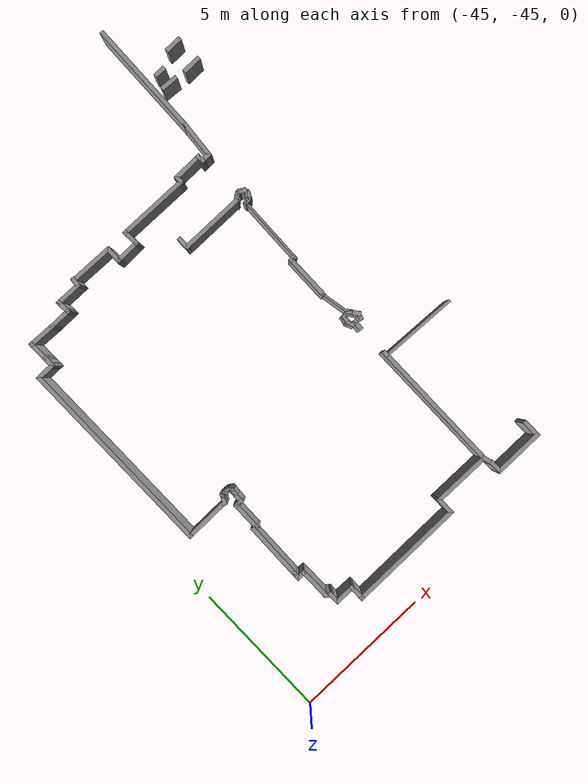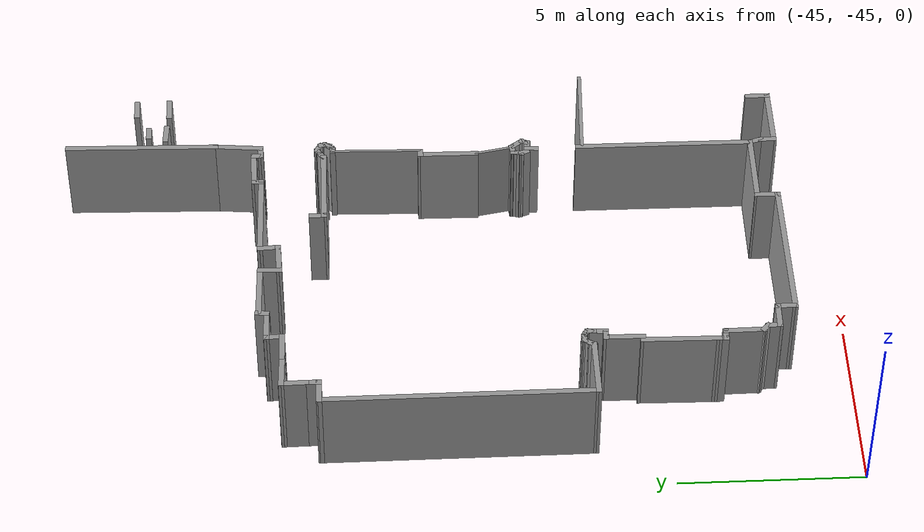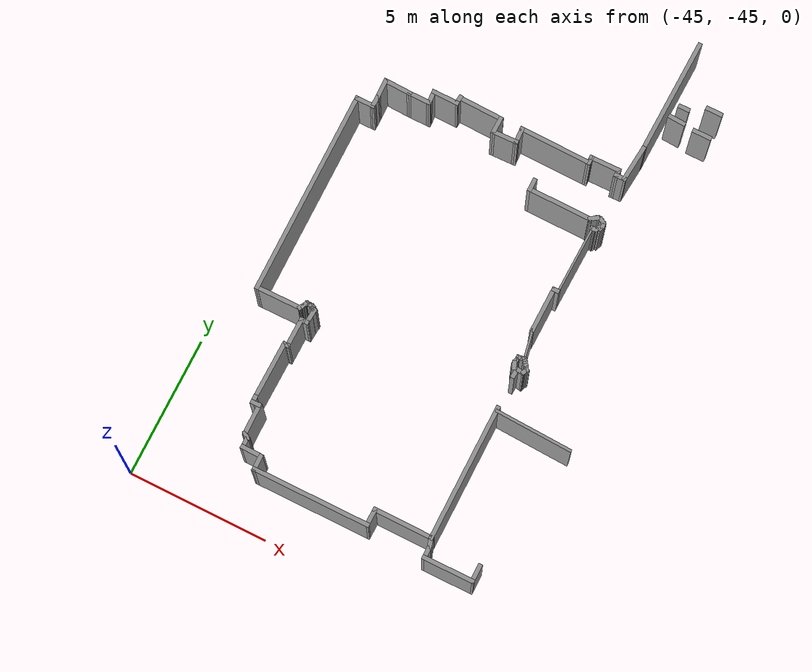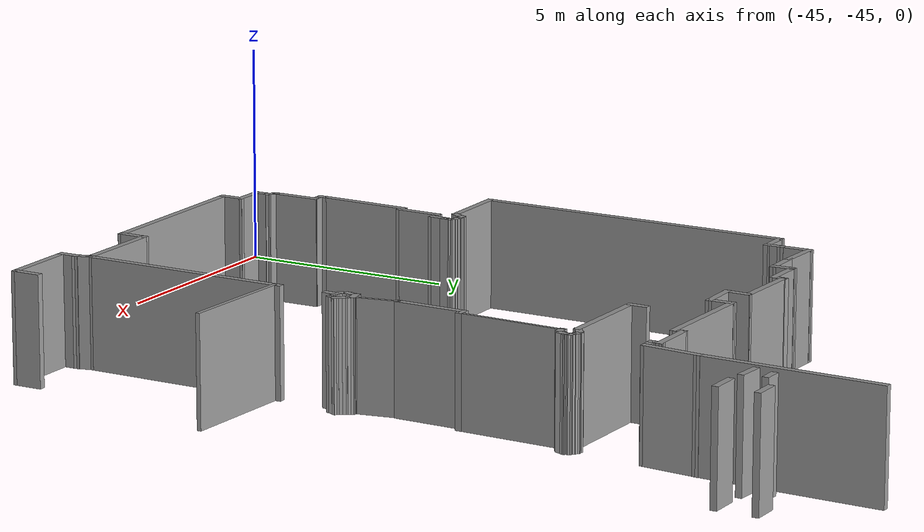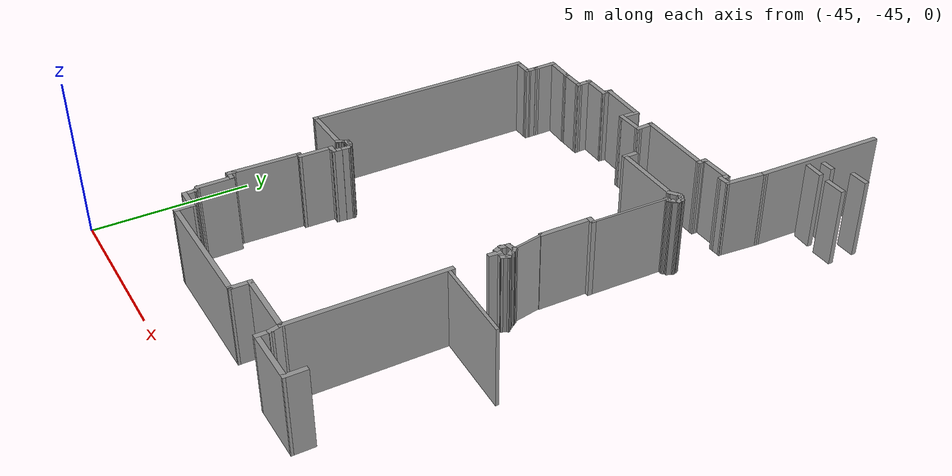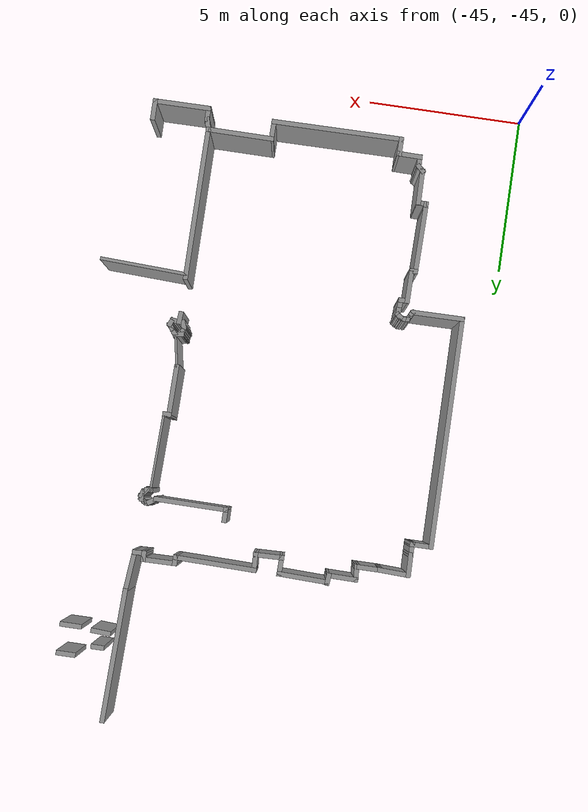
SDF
<sdf version="1.4">
 <model name="3ne_real">
  <pose>-14.229 -33.4428 0 0 -0 0</pose>
  <link name="Wall_11">
   <collision name="Wall_11_Collision">
    <geometry><box><size>7.37845 0.15 2.5</size></box></geometry>
    <pose>0 0 1.25 0 -0 0</pose>
   </collision>
   <visual name="Wall_11_Visual">
    <pose>0 0 1.25 0 -0 0</pose>
    <geometry><box><size>7.37845 0.15 2.5</size></box></geometry>
    <material>
     <script><uri>file://media/materials/scripts/gazebo.material</uri><name>Gazebo/Grey</name></script>
     <ambient>1 1 1 1</ambient>
    </material>
    <meta><layer>0</layer></meta>
   </visual>
   <pose>-29.5763 -0.911101 0 0 -0 -1.56883</pose>
  </link>
  <link name="Wall_13">
   <collision name="Wall_13_Collision">
    <geometry><box><size>1.71274 0.15 2.5</size></box></geometry>
    <pose>0 0 1.25 0 -0 0</pose>
   </collision>
   <visual name="Wall_13_Visual">
    <pose>0 0 1.25 0 -0 0</pose>
    <geometry><box><size>1.71274 0.15 2.5</size></box></geometry>
    <material>
     <script><uri>file://media/materials/scripts/gazebo.material</uri><name>Gazebo/Grey</name></script>
     <ambient>1 1 1 1</ambient>
    </material>
    <meta><layer>0</layer></meta>
   </visual>
   <pose>-28.7878 -4.5197 0 0 -0 0.007194</pose>
  </link>
  <link name="Wall_14">
   <collision name="Wall_14_Collision">
    <geometry><box><size>0.263821 0.15 2.5</size></box></geometry>
    <pose>0 0 1.25 0 -0 0</pose>
   </collision>
   <visual name="Wall_14_Visual">
    <pose>0 0 1.25 0 -0 0</pose>
    <geometry><box><size>0.263821 0.15 2.5</size></box></geometry>
    <material>
     <script><uri>file://media/materials/scripts/gazebo.material</uri><name>Gazebo/Grey</name></script>
     <ambient>1 1 1 1</ambient>
    </material>
    <meta><layer>0</layer></meta>
   </visual>
   <pose>-27.9755 -4.4663 0 0 -0 0.996491</pose>
  </link>
  <link name="Wall_15">
   <collision name="Wall_15_Collision">
    <geometry><box><size>0.253192 0.15 2.5</size></box></geometry>
    <pose>0 0 1.25 0 -0 0</pose>
   </collision>
   <visual name="Wall_15_Visual">
    <pose>0 0 1.25 0 -0 0</pose>
    <geometry><box><size>0.253192 0.15 2.5</size></box></geometry>
    <material>
     <script><uri>file://media/materials/scripts/gazebo.material</uri><name>Gazebo/Grey</name></script>
     <ambient>1 1 1 1</ambient>
    </material>
    <meta><layer>0</layer></meta>
   </visual>
   <pose>-27.9193 -4.37355 0 0 -0 1.05841</pose>
  </link>
  <link name="Wall_16">
   <collision name="Wall_16_Collision">
    <geometry><box><size>0.210803 0.15 2.5</size></box></geometry>
    <pose>0 0 1.25 0 -0 0</pose>
   </collision>
   <visual name="Wall_16_Visual">
    <pose>0 0 1.25 0 -0 0</pose>
    <geometry><box><size>0.210803 0.15 2.5</size></box></geometry>
    <material>
     <script><uri>file://media/materials/scripts/gazebo.material</uri><name>Gazebo/Grey</name></script>
     <ambient>1 1 1 1</ambient>
    </material>
    <meta><layer>0</layer></meta>
   </visual>
   <pose>-27.8772 -4.30328 0 0 -0 0.982794</pose>
  </link>
  <link name="Wall_17">
   <collision name="Wall_17_Collision">
    <geometry><box><size>0.273795 0.15 2.5</size></box></geometry>
    <pose>0 0 1.25 0 -0 0</pose>
   </collision>
   <visual name="Wall_17_Visual">
    <pose>0 0 1.25 0 -0 0</pose>
    <geometry><box><size>0.273795 0.15 2.5</size></box></geometry>
    <material>
     <script><uri>file://media/materials/scripts/gazebo.material</uri><name>Gazebo/Grey</name></script>
     <ambient>1 1 1 1</ambient>
    </material>
    <meta><layer>0</layer></meta>
   </visual>
   <pose>-27.7985 -4.27518 0 0 -0 0.045423</pose>
  </link>
  <link name="Wall_18">
   <collision name="Wall_18_Collision">
    <geometry><box><size>0.255013 0.15 2.5</size></box></geometry>
    <pose>0 0 1.25 0 -0 0</pose>
   </collision>
   <visual name="Wall_18_Visual">
    <pose>0 0 1.25 0 -0 0</pose>
    <geometry><box><size>0.255013 0.15 2.5</size></box></geometry>
    <material>
     <script><uri>file://media/materials/scripts/gazebo.material</uri><name>Gazebo/Grey</name></script>
     <ambient>1 1 1 1</ambient>
    </material>
    <meta><layer>0</layer></meta>
   </visual>
   <pose>-27.686 -4.28642 0 0 -0 -0.270947</pose>
  </link>
  <link name="Wall_19">
   <collision name="Wall_19_Collision">
    <geometry><box><size>0.198356 0.15 2.5</size></box></geometry>
    <pose>0 0 1.25 0 -0 0</pose>
   </collision>
   <visual name="Wall_19_Visual">
    <pose>0 0 1.25 0 -0 0</pose>
    <geometry><box><size>0.198356 0.15 2.5</size></box></geometry>
    <material>
     <script><uri>file://media/materials/scripts/gazebo.material</uri><name>Gazebo/Grey</name></script>
     <ambient>1 1 1 1</ambient>
    </material>
    <meta><layer>0</layer></meta>
   </visual>
   <pose>-27.6158 -4.31452 0 0 -0 -0.620249</pose>
  </link>
  <link name="Wall_20">
   <collision name="Wall_20_Collision">
    <geometry><box><size>0.225626 0.15 2.5</size></box></geometry>
    <pose>0 0 1.25 0 -0 0</pose>
   </collision>
   <visual name="Wall_20_Visual">
    <pose>0 0 1.25 0 -0 0</pose>
    <geometry><box><size>0.225626 0.15 2.5</size></box></geometry>
    <material>
     <script><uri>file://media/materials/scripts/gazebo.material</uri><name>Gazebo/Grey</name></script>
     <ambient>1 1 1 1</ambient>
    </material>
    <meta><layer>0</layer></meta>
   </visual>
   <pose>-27.568 -4.35387 0 0 -0 -0.732815</pose>
  </link>
  <link name="Wall_21">
   <collision name="Wall_21_Collision">
    <geometry><box><size>0.302707 0.15 2.5</size></box></geometry>
    <pose>0 0 1.25 0 -0 0</pose>
   </collision>
   <visual name="Wall_21_Visual">
    <pose>0 0 1.25 0 -0 0</pose>
    <geometry><box><size>0.302707 0.15 2.5</size></box></geometry>
    <material>
     <script><uri>file://media/materials/scripts/gazebo.material</uri><name>Gazebo/Grey</name></script>
     <ambient>1 1 1 1</ambient>
    </material>
    <meta><layer>0</layer></meta>
   </visual>
   <pose>-27.5427 -4.45505 0 0 -0 -1.60782</pose>
  </link>
  <link name="Wall_23">
   <collision name="Wall_23_Collision">
    <geometry><box><size>0.617408 0.15 2.5</size></box></geometry>
    <pose>0 0 1.25 0 -0 0</pose>
   </collision>
   <visual name="Wall_23_Visual">
    <pose>0 0 1.25 0 -0 0</pose>
    <geometry><box><size>0.617408 0.15 2.5</size></box></geometry>
    <material>
     <script><uri>file://media/materials/scripts/gazebo.material</uri><name>Gazebo/Grey</name></script>
     <ambient>1 1 1 1</ambient>
    </material>
    <meta><layer>0</layer></meta>
   </visual>
   <pose>-27.5539 -4.61245 0 0 -0 -1.63096</pose>
  </link>
  <link name="Wall_24">
   <collision name="Wall_24_Collision">
    <geometry><box><size>0.352364 0.15 2.5</size></box></geometry>
    <pose>0 0 1.25 0 -0 0</pose>
   </collision>
   <visual name="Wall_24_Visual">
    <pose>0 0 1.25 0 -0 0</pose>
    <geometry><box><size>0.352364 0.15 2.5</size></box></geometry>
    <material>
     <script><uri>file://media/materials/scripts/gazebo.material</uri><name>Gazebo/Grey</name></script>
     <ambient>1 1 1 1</ambient>
    </material>
    <meta><layer>0</layer></meta>
   </visual>
   <pose>-27.6692 -4.84573 0 0 -0 3.14159</pose>
  </link>
  <link name="Wall_25">
   <collision name="Wall_25_Collision">
    <geometry><box><size>1.11692 0.15 2.5</size></box></geometry>
    <pose>0 0 1.25 0 -0 0</pose>
   </collision>
   <visual name="Wall_25_Visual">
    <pose>0 0 1.25 0 -0 0</pose>
    <geometry><box><size>1.11692 0.15 2.5</size></box></geometry>
    <material>
     <script><uri>file://media/materials/scripts/gazebo.material</uri><name>Gazebo/Grey</name></script>
     <ambient>1 1 1 1</ambient>
    </material>
    <meta><layer>0</layer></meta>
   </visual>
   <pose>-27.776 -5.32916 0 0 -0 -1.58242</pose>
  </link>
  <link name="Wall_27">
   <collision name="Wall_27_Collision">
    <geometry><box><size>0.26818 0.15 2.5</size></box></geometry>
    <pose>0 0 1.25 0 -0 0</pose>
   </collision>
   <visual name="Wall_27_Visual">
    <pose>0 0 1.25 0 -0 0</pose>
    <geometry><box><size>0.26818 0.15 2.5</size></box></geometry>
    <material>
     <script><uri>file://media/materials/scripts/gazebo.material</uri><name>Gazebo/Grey</name></script>
     <ambient>1 1 1 1</ambient>
    </material>
    <meta><layer>0</layer></meta>
   </visual>
   <pose>-27.8406 -5.81258 0 0 -0 3.14159</pose>
  </link>
  <link name="Wall_274">
   <collision name="Wall_274_Collision">
    <geometry><box><size>4.22183 0.15 2.5</size></box></geometry>
    <pose>0 0 1.25 0 -0 0</pose>
   </collision>
   <visual name="Wall_274_Visual">
    <pose>0 0 1.25 0 -0 0</pose>
    <geometry><box><size>4.22183 0.15 2.5</size></box></geometry>
    <material>
     <script><uri>file://media/materials/scripts/gazebo.material</uri><name>Gazebo/Grey</name></script>
     <ambient>1 1 1 1</ambient>
    </material>
    <meta><layer>0</layer></meta>
   </visual>
   <pose>-20.2609 7.45145 0 0 -0 -1.59857</pose>
  </link>
  <link name="Wall_276">
   <collision name="Wall_276_Collision">
    <geometry><box><size>1.38756 0.15 2.5</size></box></geometry>
    <pose>0 0 1.25 0 -0 0</pose>
   </collision>
   <visual name="Wall_276_Visual">
    <pose>0 0 1.25 0 -0 0</pose>
    <geometry><box><size>1.38756 0.15 2.5</size></box></geometry>
    <material>
     <script><uri>file://media/materials/scripts/gazebo.material</uri><name>Gazebo/Grey</name></script>
     <ambient>1 1 1 1</ambient>
    </material>
    <meta><layer>0</layer></meta>
   </visual>
   <pose>-20.3739 4.80012 0 0 -0 -1.66228</pose>
  </link>
  <link name="Wall_277">
   <collision name="Wall_277_Collision">
    <geometry><box><size>0.444181 0.15 2.5</size></box></geometry>
    <pose>0 0 1.25 0 -0 0</pose>
   </collision>
   <visual name="Wall_277_Visual">
    <pose>0 0 1.25 0 -0 0</pose>
    <geometry><box><size>0.444181 0.15 2.5</size></box></geometry>
    <material>
     <script><uri>file://media/materials/scripts/gazebo.material</uri><name>Gazebo/Grey</name></script>
     <ambient>1 1 1 1</ambient>
    </material>
    <meta><layer>0</layer></meta>
   </visual>
   <pose>-20.5774 4.17828 0 0 -0 -3.10315</pose>
  </link>
  <link name="Wall_278">
   <collision name="Wall_278_Collision">
    <geometry><box><size>0.342207 0.15 2.5</size></box></geometry>
    <pose>0 0 1.25 0 -0 0</pose>
   </collision>
   <visual name="Wall_278_Visual">
    <pose>0 0 1.25 0 -0 0</pose>
    <geometry><box><size>0.342207 0.15 2.5</size></box></geometry>
    <material>
     <script><uri>file://media/materials/scripts/gazebo.material</uri><name>Gazebo/Grey</name></script>
     <ambient>1 1 1 1</ambient>
    </material>
    <meta><layer>0</layer></meta>
   </visual>
   <pose>-20.7244 4.26873 0 0 -0 1.5708</pose>
  </link>
  <link name="Wall_279">
   <collision name="Wall_279_Collision">
    <geometry><box><size>1.14502 0.15 2.5</size></box></geometry>
    <pose>0 0 1.25 0 -0 0</pose>
   </collision>
   <visual name="Wall_279_Visual">
    <pose>0 0 1.25 0 -0 0</pose>
    <geometry><box><size>1.14502 0.15 2.5</size></box></geometry>
    <material>
     <script><uri>file://media/materials/scripts/gazebo.material</uri><name>Gazebo/Grey</name></script>
     <ambient>1 1 1 1</ambient>
    </material>
    <meta><layer>0</layer></meta>
   </visual>
   <pose>-21.2219 4.35918 0 0 -0 -3.13023</pose>
  </link>
  <link name="Wall_28">
   <collision name="Wall_28_Collision">
    <geometry><box><size>2.1402 0.15 2.5</size></box></geometry>
    <pose>0 0 1.25 0 -0 0</pose>
   </collision>
   <visual name="Wall_28_Visual">
    <pose>0 0 1.25 0 -0 0</pose>
    <geometry><box><size>2.1402 0.15 2.5</size></box></geometry>
    <material>
     <script><uri>file://media/materials/scripts/gazebo.material</uri><name>Gazebo/Grey</name></script>
     <ambient>1 1 1 1</ambient>
    </material>
    <meta><layer>0</layer></meta>
   </visual>
   <pose>-27.9165 -6.80754 0 0 -0 -1.58774</pose>
  </link>
  <link name="Wall_280">
   <collision name="Wall_280_Collision">
    <geometry><box><size>0.342207 0.15 2.5</size></box></geometry>
    <pose>0 0 1.25 0 -0 0</pose>
   </collision>
   <visual name="Wall_280_Visual">
    <pose>0 0 1.25 0 -0 0</pose>
    <geometry><box><size>0.342207 0.15 2.5</size></box></geometry>
    <material>
     <script><uri>file://media/materials/scripts/gazebo.material</uri><name>Gazebo/Grey</name></script>
     <ambient>1 1 1 1</ambient>
    </material>
    <meta><layer>0</layer></meta>
   </visual>
   <pose>-21.7194 4.25742 0 0 -0 -1.5708</pose>
  </link>
  <link name="Wall_281">
   <collision name="Wall_281_Collision">
    <geometry><box><size>2.63803 0.15 2.5</size></box></geometry>
    <pose>0 0 1.25 0 -0 0</pose>
   </collision>
   <visual name="Wall_281_Visual">
    <pose>0 0 1.25 0 -0 0</pose>
    <geometry><box><size>2.63803 0.15 2.5</size></box></geometry>
    <material>
     <script><uri>file://media/materials/scripts/gazebo.material</uri><name>Gazebo/Grey</name></script>
     <ambient>1 1 1 1</ambient>
    </material>
    <meta><layer>0</layer></meta>
   </visual>
   <pose>-22.9631 4.18393 0 0 -0 3.12341</pose>
  </link>
  <link name="Wall_283">
   <collision name="Wall_283_Collision">
    <geometry><box><size>0.636696 0.15 2.5</size></box></geometry>
    <pose>0 0 1.25 0 -0 0</pose>
   </collision>
   <visual name="Wall_283_Visual">
    <pose>0 0 1.25 0 -0 0</pose>
    <geometry><box><size>0.636696 0.15 2.5</size></box></geometry>
    <material>
     <script><uri>file://media/materials/scripts/gazebo.material</uri><name>Gazebo/Grey</name></script>
     <ambient>1 1 1 1</ambient>
    </material>
    <meta><layer>0</layer></meta>
   </visual>
   <pose>-24.1954 3.96346 0 0 -0 -1.52432</pose>
  </link>
  <link name="Wall_284">
   <collision name="Wall_284_Collision">
    <geometry><box><size>0.975669 0.15 2.5</size></box></geometry>
    <pose>0 0 1.25 0 -0 0</pose>
   </collision>
   <visual name="Wall_284_Visual">
    <pose>0 0 1.25 0 -0 0</pose>
    <geometry><box><size>0.975669 0.15 2.5</size></box></geometry>
    <material>
     <script><uri>file://media/materials/scripts/gazebo.material</uri><name>Gazebo/Grey</name></script>
     <ambient>1 1 1 1</ambient>
    </material>
    <meta><layer>0</layer></meta>
   </visual>
   <pose>-24.5968 3.70906 0 0 -0 -3.1142</pose>
  </link>
  <link name="Wall_285">
   <collision name="Wall_285_Collision">
    <geometry><box><size>0.658909 0.15 2.5</size></box></geometry>
    <pose>0 0 1.25 0 -0 0</pose>
   </collision>
   <visual name="Wall_285_Visual">
    <pose>0 0 1.25 0 -0 0</pose>
    <geometry><box><size>0.658909 0.15 2.5</size></box></geometry>
    <material>
     <script><uri>file://media/materials/scripts/gazebo.material</uri><name>Gazebo/Grey</name></script>
     <ambient>1 1 1 1</ambient>
    </material>
    <meta><layer>0</layer></meta>
   </visual>
   <pose>-25.0038 3.95215 0 0 -0 1.54858</pose>
  </link>
  <link name="Wall_286">
   <collision name="Wall_286_Collision">
    <geometry><box><size>1.63112 0.15 2.5</size></box></geometry>
    <pose>0 0 1.25 0 -0 0</pose>
   </collision>
   <visual name="Wall_286_Visual">
    <pose>0 0 1.25 0 -0 0</pose>
    <geometry><box><size>1.63112 0.15 2.5</size></box></geometry>
    <material>
     <script><uri>file://media/materials/scripts/gazebo.material</uri><name>Gazebo/Grey</name></script>
     <ambient>1 1 1 1</ambient>
    </material>
    <meta><layer>0</layer></meta>
   </visual>
   <pose>-25.7388 4.22916 0 0 -0 3.11107</pose>
  </link>
  <link name="Wall_288">
   <collision name="Wall_288_Collision">
    <geometry><box><size>1.05514 0.15 2.5</size></box></geometry>
    <pose>0 0 1.25 0 -0 0</pose>
   </collision>
   <visual name="Wall_288_Visual">
    <pose>0 0 1.25 0 -0 0</pose>
    <geometry><box><size>1.05514 0.15 2.5</size></box></geometry>
    <material>
     <script><uri>file://media/materials/scripts/gazebo.material</uri><name>Gazebo/Grey</name></script>
     <ambient>1 1 1 1</ambient>
    </material>
    <meta><layer>0</layer></meta>
   </visual>
   <pose>-28.5484 3.65819 0 0 -0 -0.037482</pose>
  </link>
  <link name="Wall_289">
   <collision name="Wall_289_Collision">
    <geometry><box><size>0.873603 0.15 2.5</size></box></geometry>
    <pose>0 0 1.25 0 -0 0</pose>
   </collision>
   <visual name="Wall_289_Visual">
    <pose>0 0 1.25 0 -0 0</pose>
    <geometry><box><size>0.873603 0.15 2.5</size></box></geometry>
    <material>
     <script><uri>file://media/materials/scripts/gazebo.material</uri><name>Gazebo/Grey</name></script>
     <ambient>1 1 1 1</ambient>
    </material>
    <meta><layer>0</layer></meta>
   </visual>
   <pose>-27.7343 3.64123 0 0 -0 0</pose>
  </link>
  <link name="Wall_29">
   <collision name="Wall_29_Collision">
    <geometry><box><size>0.336265 0.15 2.5</size></box></geometry>
    <pose>0 0 1.25 0 -0 0</pose>
   </collision>
   <visual name="Wall_29_Visual">
    <pose>0 0 1.25 0 -0 0</pose>
    <geometry><box><size>0.336265 0.15 2.5</size></box></geometry>
    <material>
     <script><uri>file://media/materials/scripts/gazebo.material</uri><name>Gazebo/Grey</name></script>
     <ambient>1 1 1 1</ambient>
    </material>
    <meta><layer>0</layer></meta>
   </visual>
   <pose>-27.9334 -7.89525 0 0 -0 -1.5708</pose>
  </link>
  <link name="Wall_290">
   <collision name="Wall_290_Collision">
    <geometry><box><size>0.557654 0.15 2.5</size></box></geometry>
    <pose>0 0 1.25 0 -0 0</pose>
   </collision>
   <visual name="Wall_290_Visual">
    <pose>0 0 1.25 0 -0 0</pose>
    <geometry><box><size>0.557654 0.15 2.5</size></box></geometry>
    <material>
     <script><uri>file://media/materials/scripts/gazebo.material</uri><name>Gazebo/Grey</name></script>
     <ambient>1 1 1 1</ambient>
    </material>
    <meta><layer>0</layer></meta>
   </visual>
   <pose>-27.3838 3.84474 0 0 -0 1.6263</pose>
  </link>
  <link name="Wall_291">
   <collision name="Wall_291_Collision">
    <geometry><box><size>0.998047 0.15 2.5</size></box></geometry>
    <pose>0 0 1.25 0 -0 0</pose>
   </collision>
   <visual name="Wall_291_Visual">
    <pose>0 0 1.25 0 -0 0</pose>
    <geometry><box><size>0.998047 0.15 2.5</size></box></geometry>
    <material>
     <script><uri>file://media/materials/scripts/gazebo.material</uri><name>Gazebo/Grey</name></script>
     <ambient>1 1 1 1</ambient>
    </material>
    <meta><layer>0</layer></meta>
   </visual>
   <pose>-26.9711 4.0426 0 0 -0 -0.013333</pose>
  </link>
  <link name="Wall_292">
   <collision name="Wall_292_Collision">
    <geometry><box><size>0.388507 0.15 2.5</size></box></geometry>
    <pose>0 0 1.25 0 -0 0</pose>
   </collision>
   <visual name="Wall_292_Visual">
    <pose>0 0 1.25 0 -0 0</pose>
    <geometry><box><size>0.388507 0.15 2.5</size></box></geometry>
    <material>
     <script><uri>file://media/materials/scripts/gazebo.material</uri><name>Gazebo/Grey</name></script>
     <ambient>1 1 1 1</ambient>
    </material>
    <meta><layer>0</layer></meta>
   </visual>
   <pose>-26.5358 4.15566 0 0 -0 1.47585</pose>
  </link>
  <link name="Wall_294">
   <collision name="Wall_294_Collision">
    <geometry><box><size>0.744177 0.15 2.5</size></box></geometry>
    <pose>0 0 1.25 0 -0 0</pose>
   </collision>
   <visual name="Wall_294_Visual">
    <pose>0 0 1.25 0 -0 0</pose>
    <geometry><box><size>0.744177 0.15 2.5</size></box></geometry>
    <material>
     <script><uri>file://media/materials/scripts/gazebo.material</uri><name>Gazebo/Grey</name></script>
     <ambient>1 1 1 1</ambient>
    </material>
    <meta><layer>0</layer></meta>
   </visual>
   <pose>-29.2864 2.70296 0 0 -0 -0.000526</pose>
  </link>
  <link name="Wall_295">
   <collision name="Wall_295_Collision">
    <geometry><box><size>0.477882 0.15 2.5</size></box></geometry>
    <pose>0 0 1.25 0 -0 0</pose>
   </collision>
   <visual name="Wall_295_Visual">
    <pose>0 0 1.25 0 -0 0</pose>
    <geometry><box><size>0.477882 0.15 2.5</size></box></geometry>
    <material>
     <script><uri>file://media/materials/scripts/gazebo.material</uri><name>Gazebo/Grey</name></script>
     <ambient>1 1 1 1</ambient>
    </material>
    <meta><layer>0</layer></meta>
   </visual>
   <pose>-28.9893 2.86675 0 0 -0 1.5708</pose>
  </link>
  <link name="Wall_297">
   <collision name="Wall_297_Collision">
    <geometry><box><size>4.9138 0.15 2.5</size></box></geometry>
    <pose>0 0 1.25 0 -0 0</pose>
   </collision>
   <visual name="Wall_297_Visual">
    <pose>0 0 1.25 0 -0 0</pose>
    <geometry><box><size>4.9138 0.15 2.5</size></box></geometry>
    <material>
     <script><uri>file://media/materials/scripts/gazebo.material</uri><name>Gazebo/Grey</name></script>
     <ambient>1 1 1 1</ambient>
    </material>
    <meta><layer>0</layer></meta>
   </visual>
   <pose>-20.7532 -6.97771 0 0 -0 1.56527</pose>
  </link>
  <link name="Wall_299">
   <collision name="Wall_299_Collision">
    <geometry><box><size>2.79361 0.1 2.5</size></box></geometry>
    <pose>0 0 1.25 0 -0 0</pose>
   </collision>
   <visual name="Wall_299_Visual">
    <pose>0 0 1.25 0 -0 0</pose>
    <geometry><box><size>2.79361 0.1 2.5</size></box></geometry>
    <material>
     <script><uri>file://media/materials/scripts/gazebo.material</uri><name>Gazebo/Grey</name></script>
     <ambient>1 1 1 1</ambient>
    </material>
    <meta><layer>0</layer></meta>
   </visual>
   <pose>-19.3835 -4.75375 0 0 -0 -0.041967</pose>
  </link>
  <link name="Wall_30">
   <collision name="Wall_30_Collision">
    <geometry><box><size>0.374849 0.15 2.5</size></box></geometry>
    <pose>0 0 1.25 0 -0 0</pose>
   </collision>
   <visual name="Wall_30_Visual">
    <pose>0 0 1.25 0 -0 0</pose>
    <geometry><box><size>0.374849 0.15 2.5</size></box></geometry>
    <material>
     <script><uri>file://media/materials/scripts/gazebo.material</uri><name>Gazebo/Grey</name></script>
     <ambient>1 1 1 1</ambient>
    </material>
    <meta><layer>0</layer></meta>
   </visual>
   <pose>-27.8209 -7.988 0 0 -0 0</pose>
  </link>
  <link name="Wall_33">
   <collision name="Wall_33_Collision">
    <geometry><box><size>1.16188 0.15 2.5</size></box></geometry>
    <pose>0 0 1.25 0 -0 0</pose>
   </collision>
   <visual name="Wall_33_Visual">
    <pose>0 0 1.25 0 -0 0</pose>
    <geometry><box><size>1.16188 0.15 2.5</size></box></geometry>
    <material>
     <script><uri>file://media/materials/scripts/gazebo.material</uri><name>Gazebo/Grey</name></script>
     <ambient>1 1 1 1</ambient>
    </material>
    <meta><layer>0</layer></meta>
   </visual>
   <pose>-27.6804 -8.50515 0 0 -0 -1.55969</pose>
  </link>
  <link name="Wall_34">
   <collision name="Wall_34_Collision">
    <geometry><box><size>0.336858 0.15 2.5</size></box></geometry>
    <pose>0 0 1.25 0 -0 0</pose>
   </collision>
   <visual name="Wall_34_Visual">
    <pose>0 0 1.25 0 -0 0</pose>
    <geometry><box><size>0.336858 0.15 2.5</size></box></geometry>
    <material>
     <script><uri>file://media/materials/scripts/gazebo.material</uri><name>Gazebo/Grey</name></script>
     <ambient>1 1 1 1</ambient>
    </material>
    <meta><layer>0</layer></meta>
   </visual>
   <pose>-27.6073 -9.0757 0 0 -0 -0.764125</pose>
  </link>
  <link name="Wall_35">
   <collision name="Wall_35_Collision">
    <geometry><box><size>0.453754 0.15 2.5</size></box></geometry>
    <pose>0 0 1.25 0 -0 0</pose>
   </collision>
   <visual name="Wall_35_Visual">
    <pose>0 0 1.25 0 -0 0</pose>
    <geometry><box><size>0.453754 0.15 2.5</size></box></geometry>
    <material>
     <script><uri>file://media/materials/scripts/gazebo.material</uri><name>Gazebo/Grey</name></script>
     <ambient>1 1 1 1</ambient>
    </material>
    <meta><layer>0</layer></meta>
   </visual>
   <pose>-27.5371 -9.29212 0 0 -0 -1.55228</pose>
  </link>
  <link name="Wall_36">
   <collision name="Wall_36_Collision">
    <geometry><box><size>0.813305 0.15 2.5</size></box></geometry>
    <pose>0 0 1.25 0 -0 0</pose>
   </collision>
   <visual name="Wall_36_Visual">
    <pose>0 0 1.25 0 -0 0</pose>
    <geometry><box><size>0.813305 0.15 2.5</size></box></geometry>
    <material>
     <script><uri>file://media/materials/scripts/gazebo.material</uri><name>Gazebo/Grey</name></script>
     <ambient>1 1 1 1</ambient>
    </material>
    <meta><layer>0</layer></meta>
   </visual>
   <pose>-27.2026 -9.44951 0 0 -0 -0.016948</pose>
  </link>
  <link name="Wall_37">
   <collision name="Wall_37_Collision">
    <geometry><box><size>0.616697 0.15 2.5</size></box></geometry>
    <pose>0 0 1.25 0 -0 0</pose>
   </collision>
   <visual name="Wall_37_Visual">
    <pose>0 0 1.25 0 -0 0</pose>
    <geometry><box><size>0.616697 0.15 2.5</size></box></geometry>
    <material>
     <script><uri>file://media/materials/scripts/gazebo.material</uri><name>Gazebo/Grey</name></script>
     <ambient>1 1 1 1</ambient>
    </material>
    <meta><layer>0</layer></meta>
   </visual>
   <pose>-26.871 -9.68842 0 0 -0 -1.5708</pose>
  </link>
  <link name="Wall_38">
   <collision name="Wall_38_Collision">
    <geometry><box><size>4.22542 0.15 2.5</size></box></geometry>
    <pose>0 0 1.25 0 -0 0</pose>
   </collision>
   <visual name="Wall_38_Visual">
    <pose>0 0 1.25 0 -0 0</pose>
    <geometry><box><size>4.22542 0.15 2.5</size></box></geometry>
    <material>
     <script><uri>file://media/materials/scripts/gazebo.material</uri><name>Gazebo/Grey</name></script>
     <ambient>1 1 1 1</ambient>
    </material>
    <meta><layer>0</layer></meta>
   </visual>
   <pose>-24.8333 -9.91326 0 0 -0 0.004138</pose>
  </link>
  <link name="Wall_42">
   <collision name="Wall_42_Collision">
    <geometry><box><size>0.70653 0.15 2.5</size></box></geometry>
    <pose>0 0 1.25 0 -0 0</pose>
   </collision>
   <visual name="Wall_42_Visual">
    <pose>0 0 1.25 0 -0 0</pose>
    <geometry><box><size>0.70653 0.15 2.5</size></box></geometry>
    <material>
     <script><uri>file://media/materials/scripts/gazebo.material</uri><name>Gazebo/Grey</name></script>
     <ambient>1 1 1 1</ambient>
    </material>
    <meta><layer>0</layer></meta>
   </visual>
   <pose>-22.7928 -9.62658 0 0 -0 1.5607</pose>
  </link>
  <link name="Wall_43">
   <collision name="Wall_43_Collision">
    <geometry><box><size>2.17367 0.15 2.5</size></box></geometry>
    <pose>0 0 1.25 0 -0 0</pose>
   </collision>
   <visual name="Wall_43_Visual">
    <pose>0 0 1.25 0 -0 0</pose>
    <geometry><box><size>2.17367 0.15 2.5</size></box></geometry>
    <material>
     <script><uri>file://media/materials/scripts/gazebo.material</uri><name>Gazebo/Grey</name></script>
     <ambient>1 1 1 1</ambient>
    </material>
    <meta><layer>0</layer></meta>
   </visual>
   <pose>-21.7781 -9.35395 0 0 -0 -0.005555</pose>
  </link>
  <link name="Wall_44">
   <collision name="Wall_44_Collision">
    <geometry><box><size>0.475886 0.15 2.5</size></box></geometry>
    <pose>0 0 1.25 0 -0 0</pose>
   </collision>
   <visual name="Wall_44_Visual">
    <pose>0 0 1.25 0 -0 0</pose>
    <geometry><box><size>0.475886 0.15 2.5</size></box></geometry>
    <material>
     <script><uri>file://media/materials/scripts/gazebo.material</uri><name>Gazebo/Grey</name></script>
     <ambient>1 1 1 1</ambient>
    </material>
    <meta><layer>0</layer></meta>
   </visual>
   <pose>-20.7241 -9.51697 0 0 -0 -1.30908</pose>
  </link>
  <link name="Wall_45">
   <collision name="Wall_45_Collision">
    <geometry><box><size>0.504539 0.15 2.5</size></box></geometry>
    <pose>0 0 1.25 0 -0 0</pose>
   </collision>
   <visual name="Wall_45_Visual">
    <pose>0 0 1.25 0 -0 0</pose>
    <geometry><box><size>0.504539 0.15 2.5</size></box></geometry>
    <material>
     <script><uri>file://media/materials/scripts/gazebo.material</uri><name>Gazebo/Grey</name></script>
     <ambient>1 1 1 1</ambient>
    </material>
    <meta><layer>0</layer></meta>
   </visual>
   <pose>-20.6792 -9.85143 0 0 -0 -1.55492</pose>
  </link>
  <link name="Wall_46">
   <collision name="Wall_46_Collision">
    <geometry><box><size>1.85886 0.15 2.5</size></box></geometry>
    <pose>0 0 1.25 0 -0 0</pose>
   </collision>
   <visual name="Wall_46_Visual">
    <pose>0 0 1.25 0 -0 0</pose>
    <geometry><box><size>1.85886 0.15 2.5</size></box></geometry>
    <material>
     <script><uri>file://media/materials/scripts/gazebo.material</uri><name>Gazebo/Grey</name></script>
     <ambient>1 1 1 1</ambient>
    </material>
    <meta><layer>0</layer></meta>
   </visual>
   <pose>-19.8219 -10.0257 0 0 -0 0.003289</pose>
  </link>
  <link name="Wall_47">
   <collision name="Wall_47_Collision">
    <geometry><box><size>0.689638 0.15 2.5</size></box></geometry>
    <pose>0 0 1.25 0 -0 0</pose>
   </collision>
   <visual name="Wall_47_Visual">
    <pose>0 0 1.25 0 -0 0</pose>
    <geometry><box><size>0.689638 0.15 2.5</size></box></geometry>
    <material>
     <script><uri>file://media/materials/scripts/gazebo.material</uri><name>Gazebo/Grey</name></script>
     <ambient>1 1 1 1</ambient>
    </material>
    <meta><layer>0</layer></meta>
   </visual>
   <pose>-18.9675 -9.75306 0 0 -0 1.5708</pose>
  </link>
  <link name="Wall_569">
   <collision name="Wall_569_Collision">
    <geometry><box><size>0.486752 0.15 2.5</size></box></geometry>
    <pose>0 0 1.25 0 -0 0</pose>
   </collision>
   <visual name="Wall_569_Visual">
    <pose>0 0 1.25 0 -0 0</pose>
    <geometry><box><size>0.486752 0.15 2.5</size></box></geometry>
    <material>
     <script><uri>file://media/materials/scripts/gazebo.material</uri><name>Gazebo/Grey</name></script>
     <ambient>1 1 1 1</ambient>
    </material>
    <meta><layer>0</layer></meta>
   </visual>
   <pose>-23.0586 2.63337 0 0 -0 -1.5708</pose>
  </link>
  <link name="Wall_570">
   <collision name="Wall_570_Collision">
    <geometry><box><size>2.36486 0.15 2.5</size></box></geometry>
    <pose>0 0 1.25 0 -0 0</pose>
   </collision>
   <visual name="Wall_570_Visual">
    <pose>0 0 1.25 0 -0 0</pose>
    <geometry><box><size>2.36486 0.15 2.5</size></box></geometry>
    <material>
     <script><uri>file://media/materials/scripts/gazebo.material</uri><name>Gazebo/Grey</name></script>
     <ambient>1 1 1 1</ambient>
    </material>
    <meta><layer>0</layer></meta>
   </visual>
   <pose>-21.9512 2.4554 0 0 -0 -0.008928</pose>
  </link>
  <link name="Wall_571">
   <collision name="Wall_571_Collision">
    <geometry><box><size>0.391382 0.15 2.5</size></box></geometry>
    <pose>0 0 1.25 0 -0 0</pose>
   </collision>
   <visual name="Wall_571_Visual">
    <pose>0 0 1.25 0 -0 0</pose>
    <geometry><box><size>0.391382 0.15 2.5</size></box></geometry>
    <material>
     <script><uri>file://media/materials/scripts/gazebo.material</uri><name>Gazebo/Grey</name></script>
     <ambient>1 1 1 1</ambient>
    </material>
    <meta><layer>0</layer></meta>
   </visual>
   <pose>-20.7449 2.51472 0 0 -0 0.610726</pose>
  </link>
  <link name="Wall_572">
   <collision name="Wall_572_Collision">
    <geometry><box><size>0.231533 0.15 2.5</size></box></geometry>
    <pose>0 0 1.25 0 -0 0</pose>
   </collision>
   <visual name="Wall_572_Visual">
    <pose>0 0 1.25 0 -0 0</pose>
    <geometry><box><size>0.231533 0.15 2.5</size></box></geometry>
    <material>
     <script><uri>file://media/materials/scripts/gazebo.material</uri><name>Gazebo/Grey</name></script>
     <ambient>1 1 1 1</ambient>
    </material>
    <meta><layer>0</layer></meta>
   </visual>
   <pose>-20.6065 2.59382 0 0 -0 0.244979</pose>
  </link>
  <link name="Wall_573">
   <collision name="Wall_573_Collision">
    <geometry><box><size>0.212533 0.15 2.5</size></box></geometry>
    <pose>0 0 1.25 0 -0 0</pose>
   </collision>
   <visual name="Wall_573_Visual">
    <pose>0 0 1.25 0 -0 0</pose>
    <geometry><box><size>0.212533 0.15 2.5</size></box></geometry>
    <material>
     <script><uri>file://media/materials/scripts/gazebo.material</uri><name>Gazebo/Grey</name></script>
     <ambient>1 1 1 1</ambient>
    </material>
    <meta><layer>0</layer></meta>
   </visual>
   <pose>-20.5373 2.59382 0 0 -0 -0.321751</pose>
  </link>
  <link name="Wall_574">
   <collision name="Wall_574_Collision">
    <geometry><box><size>0.292598 0.15 2.5</size></box></geometry>
    <pose>0 0 1.25 0 -0 0</pose>
   </collision>
   <visual name="Wall_574_Visual">
    <pose>0 0 1.25 0 -0 0</pose>
    <geometry><box><size>0.292598 0.15 2.5</size></box></geometry>
    <material>
     <script><uri>file://media/materials/scripts/gazebo.material</uri><name>Gazebo/Grey</name></script>
     <ambient>1 1 1 1</ambient>
    </material>
    <meta><layer>0</layer></meta>
   </visual>
   <pose>-20.4483 2.54439 0 0 -0 -0.588003</pose>
  </link>
  <link name="Wall_575">
   <collision name="Wall_575_Collision">
    <geometry><box><size>0.250832 0.15 2.5</size></box></geometry>
    <pose>0 0 1.25 0 -0 0</pose>
   </collision>
   <visual name="Wall_575_Visual">
    <pose>0 0 1.25 0 -0 0</pose>
    <geometry><box><size>0.250832 0.15 2.5</size></box></geometry>
    <material>
     <script><uri>file://media/materials/scripts/gazebo.material</uri><name>Gazebo/Grey</name></script>
     <ambient>1 1 1 1</ambient>
    </material>
    <meta><layer>0</layer></meta>
   </visual>
   <pose>-20.3791 2.4554 0 0 -0 -1.3734</pose>
  </link>
  <link name="Wall_576">
   <collision name="Wall_576_Collision">
    <geometry><box><size>0.275067 0.15 2.5</size></box></geometry>
    <pose>0 0 1.25 0 -0 0</pose>
   </collision>
   <visual name="Wall_576_Visual">
    <pose>0 0 1.25 0 -0 0</pose>
    <geometry><box><size>0.275067 0.15 2.5</size></box></geometry>
    <material>
     <script><uri>file://media/materials/scripts/gazebo.material</uri><name>Gazebo/Grey</name></script>
     <ambient>1 1 1 1</ambient>
    </material>
    <meta><layer>0</layer></meta>
   </visual>
   <pose>-20.389 2.34664 0 0 -0 -1.89255</pose>
  </link>
  <link name="Wall_580">
   <collision name="Wall_580_Collision">
    <geometry><box><size>0.407832 0.15 2.5</size></box></geometry>
    <pose>0 0 1.25 0 -0 0</pose>
   </collision>
   <visual name="Wall_580_Visual">
    <pose>0 0 1.25 0 -0 0</pose>
    <geometry><box><size>0.407832 0.15 2.5</size></box></geometry>
    <material>
     <script><uri>file://media/materials/scripts/gazebo.material</uri><name>Gazebo/Grey</name></script>
     <ambient>1 1 1 1</ambient>
    </material>
    <meta><layer>0</layer></meta>
   </visual>
   <pose>-20.7548 -3.29906 0 0 -0 1.49402</pose>
  </link>
  <link name="Wall_581">
   <collision name="Wall_581_Collision">
    <geometry><box><size>0.367523 0.15 2.5</size></box></geometry>
    <pose>0 0 1.25 0 -0 0</pose>
   </collision>
   <visual name="Wall_581_Visual">
    <pose>0 0 1.25 0 -0 0</pose>
    <geometry><box><size>0.367523 0.15 2.5</size></box></geometry>
    <material>
     <script><uri>file://media/materials/scripts/gazebo.material</uri><name>Gazebo/Grey</name></script>
     <ambient>1 1 1 1</ambient>
    </material>
    <meta><layer>0</layer></meta>
   </visual>
   <pose>-20.6362 -3.18041 0 0 -0 -0.09066</pose>
  </link>
  <link name="Wall_582">
   <collision name="Wall_582_Collision">
    <geometry><box><size>0.3006 0.15 2.5</size></box></geometry>
    <pose>0 0 1.25 0 -0 0</pose>
   </collision>
   <visual name="Wall_582_Visual">
    <pose>0 0 1.25 0 -0 0</pose>
    <geometry><box><size>0.3006 0.15 2.5</size></box></geometry>
    <material>
     <script><uri>file://media/materials/scripts/gazebo.material</uri><name>Gazebo/Grey</name></script>
     <ambient>1 1 1 1</ambient>
    </material>
    <meta><layer>0</layer></meta>
   </visual>
   <pose>-20.4977 -3.12109 0 0 -0 1.1659</pose>
  </link>
  <link name="Wall_583">
   <collision name="Wall_583_Collision">
    <geometry><box><size>0.292598 0.15 2.5</size></box></geometry>
    <pose>0 0 1.25 0 -0 0</pose>
   </collision>
   <visual name="Wall_583_Visual">
    <pose>0 0 1.25 0 -0 0</pose>
    <geometry><box><size>0.292598 0.15 2.5</size></box></geometry>
    <material>
     <script><uri>file://media/materials/scripts/gazebo.material</uri><name>Gazebo/Grey</name></script>
     <ambient>1 1 1 1</ambient>
    </material>
    <meta><layer>0</layer></meta>
   </visual>
   <pose>-20.5076 -2.99255 0 0 -0 2.1588</pose>
  </link>
  <link name="Wall_584">
   <collision name="Wall_584_Collision">
    <geometry><box><size>0.320109 0.15 2.5</size></box></geometry>
    <pose>0 0 1.25 0 -0 0</pose>
   </collision>
   <visual name="Wall_584_Visual">
    <pose>0 0 1.25 0 -0 0</pose>
    <geometry><box><size>0.320109 0.15 2.5</size></box></geometry>
    <material>
     <script><uri>file://media/materials/scripts/gazebo.material</uri><name>Gazebo/Grey</name></script>
     <ambient>1 1 1 1</ambient>
    </material>
    <meta><layer>0</layer></meta>
   </visual>
   <pose>-20.5966 -2.86402 0 0 -0 2.19105</pose>
  </link>
  <link name="Wall_585">
   <collision name="Wall_585_Collision">
    <geometry><box><size>0.205932 0.15 2.5</size></box></geometry>
    <pose>0 0 1.25 0 -0 0</pose>
   </collision>
   <visual name="Wall_585_Visual">
    <pose>0 0 1.25 0 -0 0</pose>
    <geometry><box><size>0.205932 0.15 2.5</size></box></geometry>
    <material>
     <script><uri>file://media/materials/scripts/gazebo.material</uri><name>Gazebo/Grey</name></script>
     <ambient>1 1 1 1</ambient>
    </material>
    <meta><layer>0</layer></meta>
   </visual>
   <pose>-20.6658 -2.77503 0 0 -0 2.35619</pose>
  </link>
  <link name="Wall_586">
   <collision name="Wall_586_Collision">
    <geometry><box><size>0.351664 0.15 2.5</size></box></geometry>
    <pose>0 0 1.25 0 -0 0</pose>
   </collision>
   <visual name="Wall_586_Visual">
    <pose>0 0 1.25 0 -0 0</pose>
    <geometry><box><size>0.351664 0.15 2.5</size></box></geometry>
    <material>
     <script><uri>file://media/materials/scripts/gazebo.material</uri><name>Gazebo/Grey</name></script>
     <ambient>1 1 1 1</ambient>
    </material>
    <meta><layer>0</layer></meta>
   </visual>
   <pose>-20.7845 -2.77503 0 0 -0 -2.9442</pose>
  </link>
  <link name="Wall_587">
   <collision name="Wall_587_Collision">
    <geometry><box><size>0.250832 0.15 2.5</size></box></geometry>
    <pose>0 0 1.25 0 -0 0</pose>
   </collision>
   <visual name="Wall_587_Visual">
    <pose>0 0 1.25 0 -0 0</pose>
    <geometry><box><size>0.250832 0.15 2.5</size></box></geometry>
    <material>
     <script><uri>file://media/materials/scripts/gazebo.material</uri><name>Gazebo/Grey</name></script>
     <ambient>1 1 1 1</ambient>
    </material>
    <meta><layer>0</layer></meta>
   </visual>
   <pose>-20.8932 -2.84424 0 0 -0 -1.76819</pose>
  </link>
  <link name="Wall_588">
   <collision name="Wall_588_Collision">
    <geometry><box><size>0.270285 0.15 2.5</size></box></geometry>
    <pose>0 0 1.25 0 -0 0</pose>
   </collision>
   <visual name="Wall_588_Visual">
    <pose>0 0 1.25 0 -0 0</pose>
    <geometry><box><size>0.270285 0.15 2.5</size></box></geometry>
    <material>
     <script><uri>file://media/materials/scripts/gazebo.material</uri><name>Gazebo/Grey</name></script>
     <ambient>1 1 1 1</ambient>
    </material>
    <meta><layer>0</layer></meta>
   </visual>
   <pose>-20.913 -2.953 0 0 -0 -1.73595</pose>
  </link>
  <link name="Wall_589">
   <collision name="Wall_589_Collision">
    <geometry><box><size>0.318956 0.15 2.5</size></box></geometry>
    <pose>0 0 1.25 0 -0 0</pose>
   </collision>
   <visual name="Wall_589_Visual">
    <pose>0 0 1.25 0 -0 0</pose>
    <geometry><box><size>0.318956 0.15 2.5</size></box></geometry>
    <material>
     <script><uri>file://media/materials/scripts/gazebo.material</uri><name>Gazebo/Grey</name></script>
     <ambient>1 1 1 1</ambient>
    </material>
    <meta><layer>0</layer></meta>
   </visual>
   <pose>-20.8932 -3.09143 0 0 -0 -1.21203</pose>
  </link>
  <link name="Wall_594">
   <collision name="Wall_594_Collision">
    <geometry><box><size>1.04817 0.07 2.5</size></box></geometry>
    <pose>0 0 1.25 0 -0 0</pose>
   </collision>
   <visual name="Wall_594_Visual">
    <pose>0 0 1.25 0 -0 0</pose>
    <geometry><box><size>1.04817 0.07 2.5</size></box></geometry>
    <material>
     <script><uri>file://media/materials/scripts/gazebo.material</uri><name>Gazebo/Grey</name></script>
     <ambient>1 1 1 1</ambient>
    </material>
    <meta><layer>0</layer></meta>
   </visual>
   <pose>-20.7905 -2.23575 0 0 -0 1.75696</pose>
  </link>
  <link name="Wall_596">
   <collision name="Wall_596_Collision">
    <geometry><box><size>0.402933 0.15 2.5</size></box></geometry>
    <pose>0 0 1.25 0 -0 0</pose>
   </collision>
   <visual name="Wall_596_Visual">
    <pose>0 0 1.25 0 -0 0</pose>
    <geometry><box><size>0.402933 0.15 2.5</size></box></geometry>
    <material>
     <script><uri>file://media/materials/scripts/gazebo.material</uri><name>Gazebo/Grey</name></script>
     <ambient>1 1 1 1</ambient>
    </material>
    <meta><layer>0</layer></meta>
   </visual>
   <pose>-20.4442 2.3041 0 0 -0 -2.20523</pose>
  </link>
  <link name="Wall_597">
   <collision name="Wall_597_Collision">
    <geometry><box><size>0.207651 0.15 2.5</size></box></geometry>
    <pose>0 0 1.25 0 -0 0</pose>
   </collision>
   <visual name="Wall_597_Visual">
    <pose>0 0 1.25 0 -0 0</pose>
    <geometry><box><size>0.207651 0.15 2.5</size></box></geometry>
    <material>
     <script><uri>file://media/materials/scripts/gazebo.material</uri><name>Gazebo/Grey</name></script>
     <ambient>1 1 1 1</ambient>
    </material>
    <meta><layer>0</layer></meta>
   </visual>
   <pose>-20.5474 2.19659 0 0 -0 -2.9442</pose>
  </link>
  <link name="Wall_598">
   <collision name="Wall_598_Collision">
    <geometry><box><size>0.206531 0.15 2.5</size></box></geometry>
    <pose>0 0 1.25 0 -0 0</pose>
   </collision>
   <visual name="Wall_598_Visual">
    <pose>0 0 1.25 0 -0 0</pose>
    <geometry><box><size>0.206531 0.15 2.5</size></box></geometry>
    <material>
     <script><uri>file://media/materials/scripts/gazebo.material</uri><name>Gazebo/Grey</name></script>
     <ambient>1 1 1 1</ambient>
    </material>
    <meta><layer>0</layer></meta>
   </visual>
   <pose>-20.6038 2.19085 0 0 -0 -3.13826</pose>
  </link>
  <link name="Wall_599">
   <collision name="Wall_599_Collision">
    <geometry><box><size>2.49031 0.07 2.5</size></box></geometry>
    <pose>0 0 1.25 0 -0 0</pose>
   </collision>
   <visual name="Wall_599_Visual">
    <pose>0 0 1.25 0 -0 0</pose>
    <geometry><box><size>2.49031 0.07 2.5</size></box></geometry>
    <material>
     <script><uri>file://media/materials/scripts/gazebo.material</uri><name>Gazebo/Grey</name></script>
     <ambient>1 1 1 1</ambient>
    </material>
    <meta><layer>0</layer></meta>
   </visual>
   <pose>-20.666 0.981256 0 0 -0 -1.5989</pose>
  </link>
  <link name="Wall_601">
   <collision name="Wall_601_Collision">
    <geometry><box><size>1.67769 0.15 2.5</size></box></geometry>
    <pose>0 0 1.25 0 -0 0</pose>
   </collision>
   <visual name="Wall_601_Visual">
    <pose>0 0 1.25 0 -0 0</pose>
    <geometry><box><size>1.67769 0.15 2.5</size></box></geometry>
    <material>
     <script><uri>file://media/materials/scripts/gazebo.material</uri><name>Gazebo/Grey</name></script>
     <ambient>1 1 1 1</ambient>
    </material>
    <meta><layer>0</layer></meta>
   </visual>
   <pose>-20.8697 -0.991927 0 0 -0 1.55592</pose>
  </link>
  <link name="Wall_602">
   <collision name="Wall_602_Collision">
    <geometry><box><size>0.274369 0.15 2.5</size></box></geometry>
    <pose>0 0 1.25 0 -0 0</pose>
   </collision>
   <visual name="Wall_602_Visual">
    <pose>0 0 1.25 0 -0 0</pose>
    <geometry><box><size>0.274369 0.15 2.5</size></box></geometry>
    <material>
     <script><uri>file://media/materials/scripts/gazebo.material</uri><name>Gazebo/Grey</name></script>
     <ambient>1 1 1 1</ambient>
    </material>
    <meta><layer>0</layer></meta>
   </visual>
   <pose>-20.7961 -0.228606 0 0 -0 0</pose>
  </link>
  <link name="Wall_647">
   <collision name="Wall_647_Collision">
    <geometry><box><size>0.629416 0.15 2.5</size></box></geometry>
    <pose>0 0 1.25 0 -0 0</pose>
   </collision>
   <visual name="Wall_647_Visual">
    <pose>0 0 1.25 0 -0 0</pose>
    <geometry><box><size>0.629416 0.15 2.5</size></box></geometry>
    <material>
     <script><uri>file://media/materials/scripts/gazebo.material</uri><name>Gazebo/Grey</name></script>
     <ambient>1 1 1 1</ambient>
    </material>
    <meta><layer>0</layer></meta>
   </visual>
   <pose>-19.75 6.79184 0 0 -0 -0.062419</pose>
  </link>
  <link name="Wall_649">
   <collision name="Wall_649_Collision">
    <geometry><box><size>0.688293 0.15 2.5</size></box></geometry>
    <pose>0 0 1.25 0 -0 0</pose>
   </collision>
   <visual name="Wall_649_Visual">
    <pose>0 0 1.25 0 -0 0</pose>
    <geometry><box><size>0.688293 0.15 2.5</size></box></geometry>
    <material>
     <script><uri>file://media/materials/scripts/gazebo.material</uri><name>Gazebo/Grey</name></script>
     <ambient>1 1 1 1</ambient>
    </material>
    <meta><layer>0</layer></meta>
   </visual>
   <pose>-18.793 6.71708 0 0 -0 0</pose>
  </link>
  <link name="Wall_651">
   <collision name="Wall_651_Collision">
    <geometry><box><size>0.61353 0.15 2.5</size></box></geometry>
    <pose>0 0 1.25 0 -0 0</pose>
   </collision>
   <visual name="Wall_651_Visual">
    <pose>0 0 1.25 0 -0 0</pose>
    <geometry><box><size>0.61353 0.15 2.5</size></box></geometry>
    <material>
     <script><uri>file://media/materials/scripts/gazebo.material</uri><name>Gazebo/Grey</name></script>
     <ambient>1 1 1 1</ambient>
    </material>
    <meta><layer>0</layer></meta>
   </visual>
   <pose>-18.7706 7.61424 0 0 -0 3.14159</pose>
  </link>
  <link name="Wall_653">
   <collision name="Wall_653_Collision">
    <geometry><box><size>0.419146 0.15 2.5</size></box></geometry>
    <pose>0 0 1.25 0 -0 0</pose>
   </collision>
   <visual name="Wall_653_Visual">
    <pose>0 0 1.25 0 -0 0</pose>
    <geometry><box><size>0.419146 0.15 2.5</size></box></geometry>
    <material>
     <script><uri>file://media/materials/scripts/gazebo.material</uri><name>Gazebo/Grey</name></script>
     <ambient>1 1 1 1</ambient>
    </material>
    <meta><layer>0</layer></meta>
   </visual>
   <pose>-19.7201 7.27033 0 0 -0 0</pose>
  </link>
  <link name="Wall_664">
   <collision name="Wall_664_Collision">
    <geometry><box><size>0.794558 0.15 2.5</size></box></geometry>
    <pose>0 0 1.25 0 -0 0</pose>
   </collision>
   <visual name="Wall_664_Visual">
    <pose>0 0 1.25 0 -0 0</pose>
    <geometry><box><size>0.794558 0.15 2.5</size></box></geometry>
    <material>
     <script><uri>file://media/materials/scripts/gazebo.material</uri><name>Gazebo/Grey</name></script>
     <ambient>1 1 1 1</ambient>
    </material>
    <meta><layer>0</layer></meta>
   </visual>
   <pose>-28.995 3.35292 0 0 -0 -1.55325</pose>
  </link>
  <static>1</static>
 </model>
</sdf>
